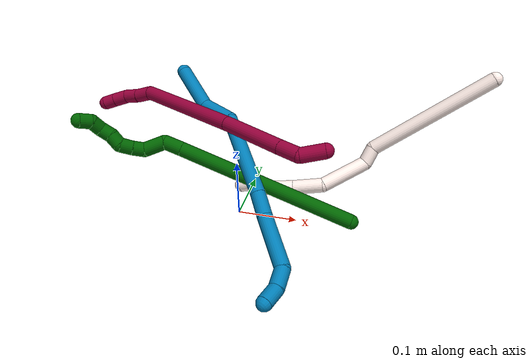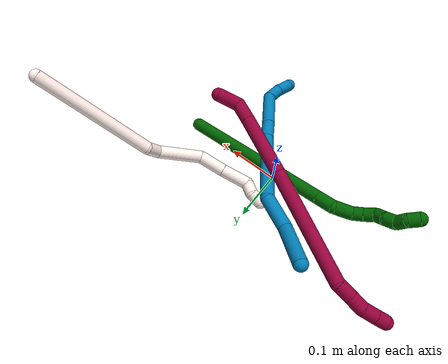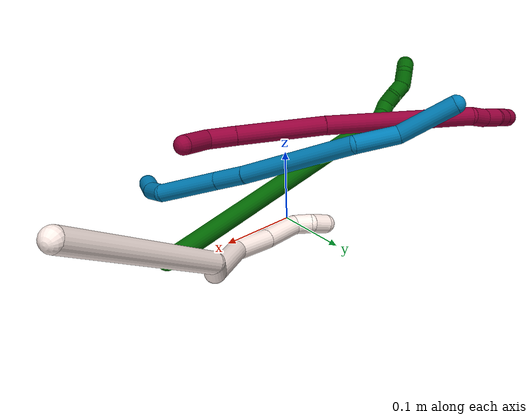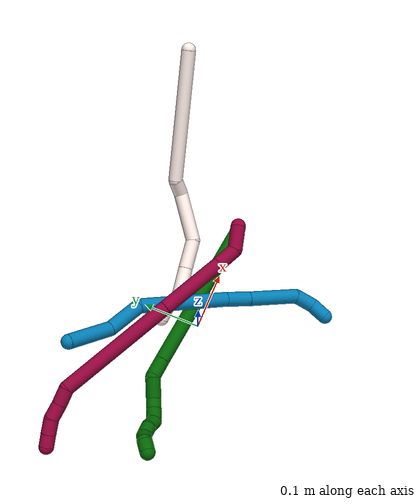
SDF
<sdf version="1.7">
 <world name="default">
  <model name="6">
   <static>0</static>
   <link name="6">
    <collision name="collision-cylinder-e_1_1_4">
     <pose>-0.041087 -0.064729 0.134017 0.449948 -0.269358 -0.061998</pose>
     <geometry><cylinder><radius>0.0125</radius><length>0.308796</length></cylinder></geometry>
     <surface>
      <friction><ode><mu>1.16</mu><mu2>1.16</mu2><slip1>0</slip1><slip2>0</slip2></ode></friction>
      <contact><ode><kp>1e+06</kp><kd>1</kd><max_vel>0</max_vel><min_depth>0.001</min_depth></ode></contact>
     </surface>
    </collision>
    <visual name="visual-cylinder-e_1_1_4">
     <pose>-0.041087 -0.064729 0.134017 0.449948 -0.269358 -0.061998</pose>
     <geometry><cylinder><radius>0.0125</radius><length>0.308796</length></cylinder></geometry>
     <material><ambient>0 0.392157 0.003922 1</ambient></material>
    </visual>
    <collision name="collision-cylinder-e_2_4_5">
     <pose>-0.08663 -0.136314 0.281899 0.459246 -0.280468 -0.065967</pose>
     <geometry><cylinder><radius>0.0125</radius><length>0.032191</length></cylinder></geometry>
     <surface>
      <friction><ode><mu>1.16</mu><mu2>1.16</mu2><slip1>0</slip1><slip2>0</slip2></ode></friction>
      <contact><ode><kp>1e+06</kp><kd>1</kd><max_vel>0</max_vel><min_depth>0.001</min_depth></ode></contact>
     </surface>
    </collision>
    <visual name="visual-cylinder-e_2_4_5">
     <pose>-0.08663 -0.136314 0.281899 0.459246 -0.280468 -0.065967</pose>
     <geometry><cylinder><radius>0.0125</radius><length>0.032191</length></cylinder></geometry>
     <material><ambient>0 0.392157 0.003922 1</ambient></material>
    </visual>
    <collision name="collision-cylinder-e_3_5_6">
     <pose>-0.104364 -0.154864 0.301546 1.11153 -0.794261 -0.509641</pose>
     <geometry><cylinder><radius>0.0125</radius><length>0.03723</length></cylinder></geometry>
     <surface>
      <friction><ode><mu>1.16</mu><mu2>1.16</mu2><slip1>0</slip1><slip2>0</slip2></ode></friction>
      <contact><ode><kp>1e+06</kp><kd>1</kd><max_vel>0</max_vel><min_depth>0.001</min_depth></ode></contact>
     </surface>
    </collision>
    <visual name="visual-cylinder-e_3_5_6">
     <pose>-0.104364 -0.154864 0.301546 1.11153 -0.794261 -0.509641</pose>
     <geometry><cylinder><radius>0.0125</radius><length>0.03723</length></cylinder></geometry>
     <material><ambient>0 0.392157 0.003922 1</ambient></material>
    </visual>
    <collision name="collision-cylinder-e_4_6_7">
     <pose>-0.119778 -0.174697 0.313208 0.945265 -0.209472 -0.107389</pose>
     <geometry><cylinder><radius>0.0125</radius><length>0.02053</length></cylinder></geometry>
     <surface>
      <friction><ode><mu>1.16</mu><mu2>1.16</mu2><slip1>0</slip1><slip2>0</slip2></ode></friction>
      <contact><ode><kp>1e+06</kp><kd>1</kd><max_vel>0</max_vel><min_depth>0.001</min_depth></ode></contact>
     </surface>
    </collision>
    <visual name="visual-cylinder-e_4_6_7">
     <pose>-0.119778 -0.174697 0.313208 0.945265 -0.209472 -0.107389</pose>
     <geometry><cylinder><radius>0.0125</radius><length>0.02053</length></cylinder></geometry>
     <material><ambient>0 0.392157 0.003922 1</ambient></material>
    </visual>
    <collision name="collision-cylinder-e_5_7_8">
     <pose>-0.122721 -0.191362 0.325346 0.937487 -0.076306 -0.038654</pose>
     <geometry><cylinder><radius>0.0125</radius><length>0.021213</length></cylinder></geometry>
     <surface>
      <friction><ode><mu>1.16</mu><mu2>1.16</mu2><slip1>0</slip1><slip2>0</slip2></ode></friction>
      <contact><ode><kp>1e+06</kp><kd>1</kd><max_vel>0</max_vel><min_depth>0.001</min_depth></ode></contact>
     </surface>
    </collision>
    <visual name="visual-cylinder-e_5_7_8">
     <pose>-0.122721 -0.191362 0.325346 0.937487 -0.076306 -0.038654</pose>
     <geometry><cylinder><radius>0.0125</radius><length>0.021213</length></cylinder></geometry>
     <material><ambient>0 0.392157 0.003922 1</ambient></material>
    </visual>
    <collision name="collision-cylinder-e_6_8_9">
     <pose>-0.121155 -0.203279 0.340721 0.35622 0.239368 0.043291</pose>
     <geometry><cylinder><radius>0.0125</radius><length>0.020026</length></cylinder></geometry>
     <surface>
      <friction><ode><mu>1.16</mu><mu2>1.16</mu2><slip1>0</slip1><slip2>0</slip2></ode></friction>
      <contact><ode><kp>1e+06</kp><kd>1</kd><max_vel>0</max_vel><min_depth>0.001</min_depth></ode></contact>
     </surface>
    </collision>
    <visual name="visual-cylinder-e_6_8_9">
     <pose>-0.121155 -0.203279 0.340721 0.35622 0.239368 0.043291</pose>
     <geometry><cylinder><radius>0.0125</radius><length>0.020026</length></cylinder></geometry>
     <material><ambient>0 0.392157 0.003922 1</ambient></material>
    </visual>
    <collision name="collision-cylinder-e_7_9_10">
     <pose>-0.118945 -0.21177 0.358445 0.534885 -0.016369 -0.004485</pose>
     <geometry><cylinder><radius>0.0125</radius><length>0.02001</length></cylinder></geometry>
     <surface>
      <friction><ode><mu>1.16</mu><mu2>1.16</mu2><slip1>0</slip1><slip2>0</slip2></ode></friction>
      <contact><ode><kp>1e+06</kp><kd>1</kd><max_vel>0</max_vel><min_depth>0.001</min_depth></ode></contact>
     </surface>
    </collision>
    <visual name="visual-cylinder-e_7_9_10">
     <pose>-0.118945 -0.21177 0.358445 0.534885 -0.016369 -0.004485</pose>
     <geometry><cylinder><radius>0.0125</radius><length>0.02001</length></cylinder></geometry>
     <material><ambient>0 0.392157 0.003922 1</ambient></material>
    </visual>
    <collision name="collision-cylinder-e_8_10_11">
     <pose>-0.115019 -0.223916 0.372849 0.882307 0.421348 0.201271</pose>
     <geometry><cylinder><radius>0.0125</radius><length>0.02</length></cylinder></geometry>
     <surface>
      <friction><ode><mu>1.16</mu><mu2>1.16</mu2><slip1>0</slip1><slip2>0</slip2></ode></friction>
      <contact><ode><kp>1e+06</kp><kd>1</kd><max_vel>0</max_vel><min_depth>0.001</min_depth></ode></contact>
     </surface>
    </collision>
    <visual name="visual-cylinder-e_8_10_11">
     <pose>-0.115019 -0.223916 0.372849 0.882307 0.421348 0.201271</pose>
     <geometry><cylinder><radius>0.0125</radius><length>0.02</length></cylinder></geometry>
     <material><ambient>0 0.392157 0.003922 1</ambient></material>
    </visual>
    <collision name="collision-cylinder-e_9_11_2">
     <pose>-0.112377 -0.240046 0.382578 1.16239 -0.145324 -0.095556</pose>
     <geometry><cylinder><radius>0.0125</radius><length>0.020004</length></cylinder></geometry>
     <surface>
      <friction><ode><mu>1.16</mu><mu2>1.16</mu2><slip1>0</slip1><slip2>0</slip2></ode></friction>
      <contact><ode><kp>1e+06</kp><kd>1</kd><max_vel>0</max_vel><min_depth>0.001</min_depth></ode></contact>
     </surface>
    </collision>
    <visual name="visual-cylinder-e_9_11_2">
     <pose>-0.112377 -0.240046 0.382578 1.16239 -0.145324 -0.095556</pose>
     <geometry><cylinder><radius>0.0125</radius><length>0.020004</length></cylinder></geometry>
     <material><ambient>0 0.392157 0.003922 1</ambient></material>
    </visual>
    <collision name="collision-sphere-2">
     <pose>-0.113826 -0.249128 0.386508 0 -0 0</pose>
     <geometry><sphere><radius>0.0125</radius></sphere></geometry>
     <surface>
      <friction><ode><mu>1.16</mu><mu2>1.16</mu2><slip1>0</slip1><slip2>0</slip2></ode></friction>
      <contact><ode><kp>1e+06</kp><kd>1</kd><max_vel>0</max_vel><min_depth>0.001</min_depth></ode></contact>
     </surface>
    </collision>
    <visual name="visual-sphere-2">
     <pose>-0.113826 -0.249128 0.386508 0 -0 0</pose>
     <geometry><sphere><radius>0.0125</radius></sphere></geometry>
     <material><ambient>0 0.392157 0.003922 1</ambient></material>
    </visual>
    <collision name="collision-sphere-11">
     <pose>-0.110929 -0.230963 0.378648 0 -0 0</pose>
     <geometry><sphere><radius>0.0125</radius></sphere></geometry>
     <surface>
      <friction><ode><mu>1.16</mu><mu2>1.16</mu2><slip1>0</slip1><slip2>0</slip2></ode></friction>
      <contact><ode><kp>1e+06</kp><kd>1</kd><max_vel>0</max_vel><min_depth>0.001</min_depth></ode></contact>
     </surface>
    </collision>
    <visual name="visual-sphere-11">
     <pose>-0.110929 -0.230963 0.378648 0 -0 0</pose>
     <geometry><sphere><radius>0.0125</radius></sphere></geometry>
     <material><ambient>0 0.392157 0.003922 1</ambient></material>
    </visual>
    <collision name="collision-sphere-10">
     <pose>-0.119109 -0.21687 0.367051 0 -0 0</pose>
     <geometry><sphere><radius>0.0125</radius></sphere></geometry>
     <surface>
      <friction><ode><mu>1.16</mu><mu2>1.16</mu2><slip1>0</slip1><slip2>0</slip2></ode></friction>
      <contact><ode><kp>1e+06</kp><kd>1</kd><max_vel>0</max_vel><min_depth>0.001</min_depth></ode></contact>
     </surface>
    </collision>
    <visual name="visual-sphere-10">
     <pose>-0.119109 -0.21687 0.367051 0 -0 0</pose>
     <geometry><sphere><radius>0.0125</radius></sphere></geometry>
     <material><ambient>0 0.392157 0.003922 1</ambient></material>
    </visual>
    <collision name="collision-sphere-9">
     <pose>-0.118781 -0.206671 0.349838 0 -0 0</pose>
     <geometry><sphere><radius>0.0125</radius></sphere></geometry>
     <surface>
      <friction><ode><mu>1.16</mu><mu2>1.16</mu2><slip1>0</slip1><slip2>0</slip2></ode></friction>
      <contact><ode><kp>1e+06</kp><kd>1</kd><max_vel>0</max_vel><min_depth>0.001</min_depth></ode></contact>
     </surface>
    </collision>
    <visual name="visual-sphere-9">
     <pose>-0.118781 -0.206671 0.349838 0 -0 0</pose>
     <geometry><sphere><radius>0.0125</radius></sphere></geometry>
     <material><ambient>0 0.392157 0.003922 1</ambient></material>
    </visual>
    <collision name="collision-sphere-4">
     <pose>-0.082174 -0.129458 0.268035 0 -0 0</pose>
     <geometry><sphere><radius>0.0125</radius></sphere></geometry>
     <surface>
      <friction><ode><mu>1.16</mu><mu2>1.16</mu2><slip1>0</slip1><slip2>0</slip2></ode></friction>
      <contact><ode><kp>1e+06</kp><kd>1</kd><max_vel>0</max_vel><min_depth>0.001</min_depth></ode></contact>
     </surface>
    </collision>
    <visual name="visual-sphere-4">
     <pose>-0.082174 -0.129458 0.268035 0 -0 0</pose>
     <geometry><sphere><radius>0.0125</radius></sphere></geometry>
     <material><ambient>0 0.392157 0.003922 1</ambient></material>
    </visual>
    <collision name="collision-sphere-1">
     <geometry><sphere><radius>0.0125</radius></sphere></geometry>
     <surface>
      <friction><ode><mu>1.16</mu><mu2>1.16</mu2><slip1>0</slip1><slip2>0</slip2></ode></friction>
      <contact><ode><kp>1e+06</kp><kd>1</kd><max_vel>0</max_vel><min_depth>0.001</min_depth></ode></contact>
     </surface>
    </collision>
    <visual name="visual-sphere-1">
     <geometry><sphere><radius>0.0125</radius></sphere></geometry>
     <material><ambient>0 0.392157 0.003922 1</ambient></material>
    </visual>
    <collision name="collision-sphere-8">
     <pose>-0.123529 -0.199886 0.331604 0 -0 0</pose>
     <geometry><sphere><radius>0.0125</radius></sphere></geometry>
     <surface>
      <friction><ode><mu>1.16</mu><mu2>1.16</mu2><slip1>0</slip1><slip2>0</slip2></ode></friction>
      <contact><ode><kp>1e+06</kp><kd>1</kd><max_vel>0</max_vel><min_depth>0.001</min_depth></ode></contact>
     </surface>
    </collision>
    <visual name="visual-sphere-8">
     <pose>-0.123529 -0.199886 0.331604 0 -0 0</pose>
     <geometry><sphere><radius>0.0125</radius></sphere></geometry>
     <material><ambient>0 0.392157 0.003922 1</ambient></material>
    </visual>
    <collision name="collision-sphere-5">
     <pose>-0.091085 -0.14317 0.295762 0 -0 0</pose>
     <geometry><sphere><radius>0.0125</radius></sphere></geometry>
     <surface>
      <friction><ode><mu>1.16</mu><mu2>1.16</mu2><slip1>0</slip1><slip2>0</slip2></ode></friction>
      <contact><ode><kp>1e+06</kp><kd>1</kd><max_vel>0</max_vel><min_depth>0.001</min_depth></ode></contact>
     </surface>
    </collision>
    <visual name="visual-sphere-5">
     <pose>-0.091085 -0.14317 0.295762 0 -0 0</pose>
     <geometry><sphere><radius>0.0125</radius></sphere></geometry>
     <material><ambient>0 0.392157 0.003922 1</ambient></material>
    </visual>
    <collision name="collision-sphere-6">
     <pose>-0.117643 -0.166558 0.307329 0 -0 0</pose>
     <geometry><sphere><radius>0.0125</radius></sphere></geometry>
     <surface>
      <friction><ode><mu>1.16</mu><mu2>1.16</mu2><slip1>0</slip1><slip2>0</slip2></ode></friction>
      <contact><ode><kp>1e+06</kp><kd>1</kd><max_vel>0</max_vel><min_depth>0.001</min_depth></ode></contact>
     </surface>
    </collision>
    <visual name="visual-sphere-6">
     <pose>-0.117643 -0.166558 0.307329 0 -0 0</pose>
     <geometry><sphere><radius>0.0125</radius></sphere></geometry>
     <material><ambient>0 0.392157 0.003922 1</ambient></material>
    </visual>
    <collision name="collision-sphere-7">
     <pose>-0.121912 -0.182837 0.319087 0 -0 0</pose>
     <geometry><sphere><radius>0.0125</radius></sphere></geometry>
     <surface>
      <friction><ode><mu>1.16</mu><mu2>1.16</mu2><slip1>0</slip1><slip2>0</slip2></ode></friction>
      <contact><ode><kp>1e+06</kp><kd>1</kd><max_vel>0</max_vel><min_depth>0.001</min_depth></ode></contact>
     </surface>
    </collision>
    <visual name="visual-sphere-7">
     <pose>-0.121912 -0.182837 0.319087 0 -0 0</pose>
     <geometry><sphere><radius>0.0125</radius></sphere></geometry>
     <material><ambient>0 0.392157 0.003922 1</ambient></material>
    </visual>
    <inertial>
     <pose>-0.067558 -0.110753 0.208246 0 -0 0</pose>
     <mass>0.5</mass>
     <inertia>
      <ixx>0.00223</ixx>
      <ixy>0</ixy>
      <ixz>0</ixz>
      <iyy>0.002079</iyy>
      <iyz>0</iyz>
      <izz>0.001737</izz>
     </inertia>
    </inertial>
   </link>
   <pose>0.192255 0.000573 0.013802 -0.562176 -1.01831 0.038758</pose>
  </model>
  <model name="8">
   <static>0</static>
   <link name="8">
    <collision name="collision-cylinder-e_1_1_4">
     <pose>-5.4e-05 3.1e-05 -0.020536 -3.14007 -0.00263 2.0918</pose>
     <geometry><cylinder><radius>0.0125</radius><length>0.041072</length></cylinder></geometry>
     <surface>
      <friction><ode><mu>1.16</mu><mu2>1.16</mu2><slip1>0</slip1><slip2>0</slip2></ode></friction>
      <contact><ode><kp>1e+06</kp><kd>1</kd><max_vel>0</max_vel><min_depth>0.001</min_depth></ode></contact>
     </surface>
    </collision>
    <visual name="visual-cylinder-e_1_1_4">
     <pose>-5.4e-05 3.1e-05 -0.020536 -3.14007 -0.00263 2.0918</pose>
     <geometry><cylinder><radius>0.0125</radius><length>0.041072</length></cylinder></geometry>
     <material><ambient>0.584314 0 0.227451 1</ambient></material>
    </visual>
    <collision name="collision-cylinder-e_2_4_5">
     <pose>-0.012239 -0.000547 -0.055032 3.09797 -0.714925 -3.02491</pose>
     <geometry><cylinder><radius>0.0125</radius><length>0.03701</length></cylinder></geometry>
     <surface>
      <friction><ode><mu>1.16</mu><mu2>1.16</mu2><slip1>0</slip1><slip2>0</slip2></ode></friction>
      <contact><ode><kp>1e+06</kp><kd>1</kd><max_vel>0</max_vel><min_depth>0.001</min_depth></ode></contact>
     </surface>
    </collision>
    <visual name="visual-cylinder-e_2_4_5">
     <pose>-0.012239 -0.000547 -0.055032 3.09797 -0.714925 -3.02491</pose>
     <geometry><cylinder><radius>0.0125</radius><length>0.03701</length></cylinder></geometry>
     <material><ambient>0.584314 0 0.227451 1</ambient></material>
    </visual>
    <collision name="collision-cylinder-e_3_5_6">
     <pose>-0.063405 -0.002529 -0.111604 3.10938 -0.741361 -3.05874</pose>
     <geometry><cylinder><radius>0.0125</radius><length>0.115608</length></cylinder></geometry>
     <surface>
      <friction><ode><mu>1.16</mu><mu2>1.16</mu2><slip1>0</slip1><slip2>0</slip2></ode></friction>
      <contact><ode><kp>1e+06</kp><kd>1</kd><max_vel>0</max_vel><min_depth>0.001</min_depth></ode></contact>
     </surface>
    </collision>
    <visual name="visual-cylinder-e_3_5_6">
     <pose>-0.063405 -0.002529 -0.111604 3.10938 -0.741361 -3.05874</pose>
     <geometry><cylinder><radius>0.0125</radius><length>0.115608</length></cylinder></geometry>
     <material><ambient>0.584314 0 0.227451 1</ambient></material>
    </visual>
    <collision name="collision-cylinder-e_4_6_7">
     <pose>-0.171886 -0.001147 -0.230108 -3.1053 -0.740743 3.04818</pose>
     <geometry><cylinder><radius>0.0125</radius><length>0.205819</length></cylinder></geometry>
     <surface>
      <friction><ode><mu>1.16</mu><mu2>1.16</mu2><slip1>0</slip1><slip2>0</slip2></ode></friction>
      <contact><ode><kp>1e+06</kp><kd>1</kd><max_vel>0</max_vel><min_depth>0.001</min_depth></ode></contact>
     </surface>
    </collision>
    <visual name="visual-cylinder-e_4_6_7">
     <pose>-0.171886 -0.001147 -0.230108 -3.1053 -0.740743 3.04818</pose>
     <geometry><cylinder><radius>0.0125</radius><length>0.205819</length></cylinder></geometry>
     <material><ambient>0.584314 0 0.227451 1</ambient></material>
    </visual>
    <collision name="collision-cylinder-e_5_7_8">
     <pose>-0.244963 0.004531 -0.319424 -2.92723 -0.25833 1.758</pose>
     <geometry><cylinder><radius>0.0125</radius><length>0.028415</length></cylinder></geometry>
     <surface>
      <friction><ode><mu>1.16</mu><mu2>1.16</mu2><slip1>0</slip1><slip2>0</slip2></ode></friction>
      <contact><ode><kp>1e+06</kp><kd>1</kd><max_vel>0</max_vel><min_depth>0.001</min_depth></ode></contact>
     </surface>
    </collision>
    <visual name="visual-cylinder-e_5_7_8">
     <pose>-0.244963 0.004531 -0.319424 -2.92723 -0.25833 1.758</pose>
     <geometry><cylinder><radius>0.0125</radius><length>0.028415</length></cylinder></geometry>
     <material><ambient>0.584314 0 0.227451 1</ambient></material>
    </visual>
    <collision name="collision-cylinder-e_6_8_9">
     <pose>-0.253149 0.008811 -0.345252 -3.03256 -0.350032 2.54293</pose>
     <geometry><cylinder><radius>0.0125</radius><length>0.026574</length></cylinder></geometry>
     <surface>
      <friction><ode><mu>1.16</mu><mu2>1.16</mu2><slip1>0</slip1><slip2>0</slip2></ode></friction>
      <contact><ode><kp>1e+06</kp><kd>1</kd><max_vel>0</max_vel><min_depth>0.001</min_depth></ode></contact>
     </surface>
    </collision>
    <visual name="visual-cylinder-e_6_8_9">
     <pose>-0.253149 0.008811 -0.345252 -3.03256 -0.350032 2.54293</pose>
     <geometry><cylinder><radius>0.0125</radius><length>0.026574</length></cylinder></geometry>
     <material><ambient>0.584314 0 0.227451 1</ambient></material>
    </visual>
    <collision name="collision-cylinder-e_7_9_10">
     <pose>-0.258075 0.011801 -0.369981 -3.00987 -0.029708 0.443058</pose>
     <geometry><cylinder><radius>0.0125</radius><length>0.024869</length></cylinder></geometry>
     <surface>
      <friction><ode><mu>1.16</mu><mu2>1.16</mu2><slip1>0</slip1><slip2>0</slip2></ode></friction>
      <contact><ode><kp>1e+06</kp><kd>1</kd><max_vel>0</max_vel><min_depth>0.001</min_depth></ode></contact>
     </surface>
    </collision>
    <visual name="visual-cylinder-e_7_9_10">
     <pose>-0.258075 0.011801 -0.369981 -3.00987 -0.029708 0.443058</pose>
     <geometry><cylinder><radius>0.0125</radius><length>0.024869</length></cylinder></geometry>
     <material><ambient>0.584314 0 0.227451 1</ambient></material>
    </visual>
    <collision name="collision-cylinder-e_8_10_2">
     <pose>-0.258505 0.014882 -0.392517 -3.00081 -0.005878 0.083313</pose>
     <geometry><cylinder><radius>0.0125</radius><length>0.020635</length></cylinder></geometry>
     <surface>
      <friction><ode><mu>1.16</mu><mu2>1.16</mu2><slip1>0</slip1><slip2>0</slip2></ode></friction>
      <contact><ode><kp>1e+06</kp><kd>1</kd><max_vel>0</max_vel><min_depth>0.001</min_depth></ode></contact>
     </surface>
    </collision>
    <visual name="visual-cylinder-e_8_10_2">
     <pose>-0.258505 0.014882 -0.392517 -3.00081 -0.005878 0.083313</pose>
     <geometry><cylinder><radius>0.0125</radius><length>0.020635</length></cylinder></geometry>
     <material><ambient>0.584314 0 0.227451 1</ambient></material>
    </visual>
    <collision name="collision-sphere-2">
     <pose>-0.258565 0.016329 -0.402732 0 -0 0</pose>
     <geometry><sphere><radius>0.0125</radius></sphere></geometry>
     <surface>
      <friction><ode><mu>1.16</mu><mu2>1.16</mu2><slip1>0</slip1><slip2>0</slip2></ode></friction>
      <contact><ode><kp>1e+06</kp><kd>1</kd><max_vel>0</max_vel><min_depth>0.001</min_depth></ode></contact>
     </surface>
    </collision>
    <visual name="visual-sphere-2">
     <pose>-0.258565 0.016329 -0.402732 0 -0 0</pose>
     <geometry><sphere><radius>0.0125</radius></sphere></geometry>
     <material><ambient>0.584314 0 0.227451 1</ambient></material>
    </visual>
    <collision name="collision-sphere-10">
     <pose>-0.258444 0.013434 -0.382302 0 -0 0</pose>
     <geometry><sphere><radius>0.0125</radius></sphere></geometry>
     <surface>
      <friction><ode><mu>1.16</mu><mu2>1.16</mu2><slip1>0</slip1><slip2>0</slip2></ode></friction>
      <contact><ode><kp>1e+06</kp><kd>1</kd><max_vel>0</max_vel><min_depth>0.001</min_depth></ode></contact>
     </surface>
    </collision>
    <visual name="visual-sphere-10">
     <pose>-0.258444 0.013434 -0.382302 0 -0 0</pose>
     <geometry><sphere><radius>0.0125</radius></sphere></geometry>
     <material><ambient>0.584314 0 0.227451 1</ambient></material>
    </visual>
    <collision name="collision-sphere-9">
     <pose>-0.257705 0.010169 -0.35766 0 -0 0</pose>
     <geometry><sphere><radius>0.0125</radius></sphere></geometry>
     <surface>
      <friction><ode><mu>1.16</mu><mu2>1.16</mu2><slip1>0</slip1><slip2>0</slip2></ode></friction>
      <contact><ode><kp>1e+06</kp><kd>1</kd><max_vel>0</max_vel><min_depth>0.001</min_depth></ode></contact>
     </surface>
    </collision>
    <visual name="visual-sphere-9">
     <pose>-0.257705 0.010169 -0.35766 0 -0 0</pose>
     <geometry><sphere><radius>0.0125</radius></sphere></geometry>
     <material><ambient>0.584314 0 0.227451 1</ambient></material>
    </visual>
    <collision name="collision-sphere-4">
     <pose>-0.000108 6.3e-05 -0.041071 0 -0 0</pose>
     <geometry><sphere><radius>0.0125</radius></sphere></geometry>
     <surface>
      <friction><ode><mu>1.16</mu><mu2>1.16</mu2><slip1>0</slip1><slip2>0</slip2></ode></friction>
      <contact><ode><kp>1e+06</kp><kd>1</kd><max_vel>0</max_vel><min_depth>0.001</min_depth></ode></contact>
     </surface>
    </collision>
    <visual name="visual-sphere-4">
     <pose>-0.000108 6.3e-05 -0.041071 0 -0 0</pose>
     <geometry><sphere><radius>0.0125</radius></sphere></geometry>
     <material><ambient>0.584314 0 0.227451 1</ambient></material>
    </visual>
    <collision name="collision-sphere-1">
     <geometry><sphere><radius>0.0125</radius></sphere></geometry>
     <surface>
      <friction><ode><mu>1.16</mu><mu2>1.16</mu2><slip1>0</slip1><slip2>0</slip2></ode></friction>
      <contact><ode><kp>1e+06</kp><kd>1</kd><max_vel>0</max_vel><min_depth>0.001</min_depth></ode></contact>
     </surface>
    </collision>
    <visual name="visual-sphere-1">
     <geometry><sphere><radius>0.0125</radius></sphere></geometry>
     <material><ambient>0.584314 0 0.227451 1</ambient></material>
    </visual>
    <collision name="collision-sphere-8">
     <pose>-0.248592 0.007453 -0.332845 0 -0 0</pose>
     <geometry><sphere><radius>0.0125</radius></sphere></geometry>
     <surface>
      <friction><ode><mu>1.16</mu><mu2>1.16</mu2><slip1>0</slip1><slip2>0</slip2></ode></friction>
      <contact><ode><kp>1e+06</kp><kd>1</kd><max_vel>0</max_vel><min_depth>0.001</min_depth></ode></contact>
     </surface>
    </collision>
    <visual name="visual-sphere-8">
     <pose>-0.248592 0.007453 -0.332845 0 -0 0</pose>
     <geometry><sphere><radius>0.0125</radius></sphere></geometry>
     <material><ambient>0.584314 0 0.227451 1</ambient></material>
    </visual>
    <collision name="collision-sphere-5">
     <pose>-0.02437 -0.001156 -0.068993 0 -0 0</pose>
     <geometry><sphere><radius>0.0125</radius></sphere></geometry>
     <surface>
      <friction><ode><mu>1.16</mu><mu2>1.16</mu2><slip1>0</slip1><slip2>0</slip2></ode></friction>
      <contact><ode><kp>1e+06</kp><kd>1</kd><max_vel>0</max_vel><min_depth>0.001</min_depth></ode></contact>
     </surface>
    </collision>
    <visual name="visual-sphere-5">
     <pose>-0.02437 -0.001156 -0.068993 0 -0 0</pose>
     <geometry><sphere><radius>0.0125</radius></sphere></geometry>
     <material><ambient>0.584314 0 0.227451 1</ambient></material>
    </visual>
    <collision name="collision-sphere-6">
     <pose>-0.102439 -0.003903 -0.154215 0 -0 0</pose>
     <geometry><sphere><radius>0.0125</radius></sphere></geometry>
     <surface>
      <friction><ode><mu>1.16</mu><mu2>1.16</mu2><slip1>0</slip1><slip2>0</slip2></ode></friction>
      <contact><ode><kp>1e+06</kp><kd>1</kd><max_vel>0</max_vel><min_depth>0.001</min_depth></ode></contact>
     </surface>
    </collision>
    <visual name="visual-sphere-6">
     <pose>-0.102439 -0.003903 -0.154215 0 -0 0</pose>
     <geometry><sphere><radius>0.0125</radius></sphere></geometry>
     <material><ambient>0.584314 0 0.227451 1</ambient></material>
    </visual>
    <collision name="collision-sphere-7">
     <pose>-0.241333 0.001609 -0.306002 0 -0 0</pose>
     <geometry><sphere><radius>0.0125</radius></sphere></geometry>
     <surface>
      <friction><ode><mu>1.16</mu><mu2>1.16</mu2><slip1>0</slip1><slip2>0</slip2></ode></friction>
      <contact><ode><kp>1e+06</kp><kd>1</kd><max_vel>0</max_vel><min_depth>0.001</min_depth></ode></contact>
     </surface>
    </collision>
    <visual name="visual-sphere-7">
     <pose>-0.241333 0.001609 -0.306002 0 -0 0</pose>
     <geometry><sphere><radius>0.0125</radius></sphere></geometry>
     <material><ambient>0.584314 0 0.227451 1</ambient></material>
    </visual>
    <inertial>
     <pose>-0.137205 0.000832 -0.197389 0 -0 0</pose>
     <mass>0.5</mass>
     <inertia>
      <ixx>-0.000611</ixx>
      <ixy>0</ixy>
      <ixz>0</ixz>
      <iyy>0.000929</iyy>
      <iyz>0</iyz>
      <izz>0.000542</izz>
     </inertia>
    </inertial>
   </link>
   <pose>0.14715 -0.011072 0.152479 -1.3743 0.181833 -1.28073</pose>
  </model>
  <model name="9">
   <static>0</static>
   <link name="9">
    <collision name="collision-cylinder-e_1_1_4">
     <pose>0.000532 0.000127 0.014716 -0.008662 0.036135 -0.000157</pose>
     <geometry><cylinder><radius>0.0125</radius><length>0.029452</length></cylinder></geometry>
     <surface>
      <friction><ode><mu>1.16</mu><mu2>1.16</mu2><slip1>0</slip1><slip2>0</slip2></ode></friction>
      <contact><ode><kp>1e+06</kp><kd>1</kd><max_vel>0</max_vel><min_depth>0.001</min_depth></ode></contact>
     </surface>
    </collision>
    <visual name="visual-cylinder-e_1_1_4">
     <pose>0.000532 0.000127 0.014716 -0.008662 0.036135 -0.000157</pose>
     <geometry><cylinder><radius>0.0125</radius><length>0.029452</length></cylinder></geometry>
     <material><ambient>0 0.490196 0.709804 1</ambient></material>
    </visual>
    <collision name="collision-cylinder-e_2_4_5">
     <pose>-0.003438 0.003316 0.04524 -0.191266 -0.272636 0.026314</pose>
     <geometry><cylinder><radius>0.0125</radius><length>0.033439</length></cylinder></geometry>
     <surface>
      <friction><ode><mu>1.16</mu><mu2>1.16</mu2><slip1>0</slip1><slip2>0</slip2></ode></friction>
      <contact><ode><kp>1e+06</kp><kd>1</kd><max_vel>0</max_vel><min_depth>0.001</min_depth></ode></contact>
     </surface>
    </collision>
    <visual name="visual-cylinder-e_2_4_5">
     <pose>-0.003438 0.003316 0.04524 -0.191266 -0.272636 0.026314</pose>
     <geometry><cylinder><radius>0.0125</radius><length>0.033439</length></cylinder></geometry>
     <material><ambient>0 0.490196 0.709804 1</ambient></material>
    </visual>
    <collision name="collision-cylinder-e_3_5_6">
     <pose>-0.032757 0.0323 0.088876 -0.749983 -0.578151 0.233068</pose>
     <geometry><cylinder><radius>0.0125</radius><length>0.090825</length></cylinder></geometry>
     <surface>
      <friction><ode><mu>1.16</mu><mu2>1.16</mu2><slip1>0</slip1><slip2>0</slip2></ode></friction>
      <contact><ode><kp>1e+06</kp><kd>1</kd><max_vel>0</max_vel><min_depth>0.001</min_depth></ode></contact>
     </surface>
    </collision>
    <visual name="visual-cylinder-e_3_5_6">
     <pose>-0.032757 0.0323 0.088876 -0.749983 -0.578151 0.233068</pose>
     <geometry><cylinder><radius>0.0125</radius><length>0.090825</length></cylinder></geometry>
     <material><ambient>0 0.490196 0.709804 1</ambient></material>
    </visual>
    <collision name="collision-cylinder-e_4_6_7">
     <pose>-0.069134 0.070025 0.130441 -0.70973 -0.568115 0.215529</pose>
     <geometry><cylinder><radius>0.0125</radius><length>0.042971</length></cylinder></geometry>
     <surface>
      <friction><ode><mu>1.16</mu><mu2>1.16</mu2><slip1>0</slip1><slip2>0</slip2></ode></friction>
      <contact><ode><kp>1e+06</kp><kd>1</kd><max_vel>0</max_vel><min_depth>0.001</min_depth></ode></contact>
     </surface>
    </collision>
    <visual name="visual-cylinder-e_4_6_7">
     <pose>-0.069134 0.070025 0.130441 -0.70973 -0.568115 0.215529</pose>
     <geometry><cylinder><radius>0.0125</radius><length>0.042971</length></cylinder></geometry>
     <material><ambient>0 0.490196 0.709804 1</ambient></material>
    </visual>
    <collision name="collision-cylinder-e_5_7_8">
     <pose>-0.127174 0.126914 0.191034 -0.766177 -0.62058 0.257016</pose>
     <geometry><cylinder><radius>0.0125</radius><length>0.15986</length></cylinder></geometry>
     <surface>
      <friction><ode><mu>1.16</mu><mu2>1.16</mu2><slip1>0</slip1><slip2>0</slip2></ode></friction>
      <contact><ode><kp>1e+06</kp><kd>1</kd><max_vel>0</max_vel><min_depth>0.001</min_depth></ode></contact>
     </surface>
    </collision>
    <visual name="visual-cylinder-e_5_7_8">
     <pose>-0.127174 0.126914 0.191034 -0.766177 -0.62058 0.257016</pose>
     <geometry><cylinder><radius>0.0125</radius><length>0.15986</length></cylinder></geometry>
     <material><ambient>0 0.490196 0.709804 1</ambient></material>
    </visual>
    <collision name="collision-cylinder-e_6_8_9">
     <pose>-0.188313 0.19884 0.241631 -1.43227 -0.4959 0.433695</pose>
     <geometry><cylinder><radius>0.0125</radius><length>0.061616</length></cylinder></geometry>
     <surface>
      <friction><ode><mu>1.16</mu><mu2>1.16</mu2><slip1>0</slip1><slip2>0</slip2></ode></friction>
      <contact><ode><kp>1e+06</kp><kd>1</kd><max_vel>0</max_vel><min_depth>0.001</min_depth></ode></contact>
     </surface>
    </collision>
    <visual name="visual-cylinder-e_6_8_9">
     <pose>-0.188313 0.19884 0.241631 -1.43227 -0.4959 0.433695</pose>
     <geometry><cylinder><radius>0.0125</radius><length>0.061616</length></cylinder></geometry>
     <material><ambient>0 0.490196 0.709804 1</ambient></material>
    </visual>
    <collision name="collision-cylinder-e_7_9_2">
     <pose>-0.233323 0.248906 0.259989 -1.00917 -0.835673 0.480909</pose>
     <geometry><cylinder><radius>0.0125</radius><length>0.081838</length></cylinder></geometry>
     <surface>
      <friction><ode><mu>1.16</mu><mu2>1.16</mu2><slip1>0</slip1><slip2>0</slip2></ode></friction>
      <contact><ode><kp>1e+06</kp><kd>1</kd><max_vel>0</max_vel><min_depth>0.001</min_depth></ode></contact>
     </surface>
    </collision>
    <visual name="visual-cylinder-e_7_9_2">
     <pose>-0.233323 0.248906 0.259989 -1.00917 -0.835673 0.480909</pose>
     <geometry><cylinder><radius>0.0125</radius><length>0.081838</length></cylinder></geometry>
     <material><ambient>0 0.490196 0.709804 1</ambient></material>
    </visual>
    <collision name="collision-sphere-2">
     <pose>-0.263675 0.272134 0.274604 0 -0 0</pose>
     <geometry><sphere><radius>0.0125</radius></sphere></geometry>
     <surface>
      <friction><ode><mu>1.16</mu><mu2>1.16</mu2><slip1>0</slip1><slip2>0</slip2></ode></friction>
      <contact><ode><kp>1e+06</kp><kd>1</kd><max_vel>0</max_vel><min_depth>0.001</min_depth></ode></contact>
     </surface>
    </collision>
    <visual name="visual-sphere-2">
     <pose>-0.263675 0.272134 0.274604 0 -0 0</pose>
     <geometry><sphere><radius>0.0125</radius></sphere></geometry>
     <material><ambient>0 0.490196 0.709804 1</ambient></material>
    </visual>
    <collision name="collision-sphere-9">
     <pose>-0.202972 0.225678 0.245373 0 -0 0</pose>
     <geometry><sphere><radius>0.0125</radius></sphere></geometry>
     <surface>
      <friction><ode><mu>1.16</mu><mu2>1.16</mu2><slip1>0</slip1><slip2>0</slip2></ode></friction>
      <contact><ode><kp>1e+06</kp><kd>1</kd><max_vel>0</max_vel><min_depth>0.001</min_depth></ode></contact>
     </surface>
    </collision>
    <visual name="visual-sphere-9">
     <pose>-0.202972 0.225678 0.245373 0 -0 0</pose>
     <geometry><sphere><radius>0.0125</radius></sphere></geometry>
     <material><ambient>0 0.490196 0.709804 1</ambient></material>
    </visual>
    <collision name="collision-sphere-4">
     <pose>0.001064 0.000255 0.029431 0 -0 0</pose>
     <geometry><sphere><radius>0.0125</radius></sphere></geometry>
     <surface>
      <friction><ode><mu>1.16</mu><mu2>1.16</mu2><slip1>0</slip1><slip2>0</slip2></ode></friction>
      <contact><ode><kp>1e+06</kp><kd>1</kd><max_vel>0</max_vel><min_depth>0.001</min_depth></ode></contact>
     </surface>
    </collision>
    <visual name="visual-sphere-4">
     <pose>0.001064 0.000255 0.029431 0 -0 0</pose>
     <geometry><sphere><radius>0.0125</radius></sphere></geometry>
     <material><ambient>0 0.490196 0.709804 1</ambient></material>
    </visual>
    <collision name="collision-sphere-1">
     <geometry><sphere><radius>0.0125</radius></sphere></geometry>
     <surface>
      <friction><ode><mu>1.16</mu><mu2>1.16</mu2><slip1>0</slip1><slip2>0</slip2></ode></friction>
      <contact><ode><kp>1e+06</kp><kd>1</kd><max_vel>0</max_vel><min_depth>0.001</min_depth></ode></contact>
     </surface>
    </collision>
    <visual name="visual-sphere-1">
     <geometry><sphere><radius>0.0125</radius></sphere></geometry>
     <material><ambient>0 0.490196 0.709804 1</ambient></material>
    </visual>
    <collision name="collision-sphere-8">
     <pose>-0.173653 0.172003 0.23789 0 -0 0</pose>
     <geometry><sphere><radius>0.0125</radius></sphere></geometry>
     <surface>
      <friction><ode><mu>1.16</mu><mu2>1.16</mu2><slip1>0</slip1><slip2>0</slip2></ode></friction>
      <contact><ode><kp>1e+06</kp><kd>1</kd><max_vel>0</max_vel><min_depth>0.001</min_depth></ode></contact>
     </surface>
    </collision>
    <visual name="visual-sphere-8">
     <pose>-0.173653 0.172003 0.23789 0 -0 0</pose>
     <geometry><sphere><radius>0.0125</radius></sphere></geometry>
     <material><ambient>0 0.490196 0.709804 1</ambient></material>
    </visual>
    <collision name="collision-sphere-5">
     <pose>-0.00794 0.006377 0.061048 0 -0 0</pose>
     <geometry><sphere><radius>0.0125</radius></sphere></geometry>
     <surface>
      <friction><ode><mu>1.16</mu><mu2>1.16</mu2><slip1>0</slip1><slip2>0</slip2></ode></friction>
      <contact><ode><kp>1e+06</kp><kd>1</kd><max_vel>0</max_vel><min_depth>0.001</min_depth></ode></contact>
     </surface>
    </collision>
    <visual name="visual-sphere-5">
     <pose>-0.00794 0.006377 0.061048 0 -0 0</pose>
     <geometry><sphere><radius>0.0125</radius></sphere></geometry>
     <material><ambient>0 0.490196 0.709804 1</ambient></material>
    </visual>
    <collision name="collision-sphere-6">
     <pose>-0.057574 0.058224 0.116703 0 -0 0</pose>
     <geometry><sphere><radius>0.0125</radius></sphere></geometry>
     <surface>
      <friction><ode><mu>1.16</mu><mu2>1.16</mu2><slip1>0</slip1><slip2>0</slip2></ode></friction>
      <contact><ode><kp>1e+06</kp><kd>1</kd><max_vel>0</max_vel><min_depth>0.001</min_depth></ode></contact>
     </surface>
    </collision>
    <visual name="visual-sphere-6">
     <pose>-0.057574 0.058224 0.116703 0 -0 0</pose>
     <geometry><sphere><radius>0.0125</radius></sphere></geometry>
     <material><ambient>0 0.490196 0.709804 1</ambient></material>
    </visual>
    <collision name="collision-sphere-7">
     <pose>-0.080694 0.081826 0.144178 0 -0 0</pose>
     <geometry><sphere><radius>0.0125</radius></sphere></geometry>
     <surface>
      <friction><ode><mu>1.16</mu><mu2>1.16</mu2><slip1>0</slip1><slip2>0</slip2></ode></friction>
      <contact><ode><kp>1e+06</kp><kd>1</kd><max_vel>0</max_vel><min_depth>0.001</min_depth></ode></contact>
     </surface>
    </collision>
    <visual name="visual-sphere-7">
     <pose>-0.080694 0.081826 0.144178 0 -0 0</pose>
     <geometry><sphere><radius>0.0125</radius></sphere></geometry>
     <material><ambient>0 0.490196 0.709804 1</ambient></material>
    </visual>
    <inertial>
     <pose>-0.114146 0.117935 0.164655 0 -0 0</pose>
     <mass>0.5</mass>
     <inertia>
      <ixx>0.000476</ixx>
      <ixy>0</ixy>
      <ixz>0</ixz>
      <iyy>0.000519</iyy>
      <iyz>0</iyz>
      <izz>2.6e-05</izz>
     </inertia>
    </inertial>
   </link>
   <pose>0.098725 -0.199916 0.012467 -1.29855 1.14865 -0.094841</pose>
  </model>
  <model name="11">
   <static>0</static>
   <link name="11">
    <collision name="collision-cylinder-e_1_1_4">
     <pose>-0.058541 0.019804 -0.096222 -2.93861 -0.537406 2.43312</pose>
     <geometry><cylinder><radius>0.0125</radius><length>0.228718</length></cylinder></geometry>
     <surface>
      <friction><ode><mu>1.16</mu><mu2>1.16</mu2><slip1>0</slip1><slip2>0</slip2></ode></friction>
      <contact><ode><kp>1e+06</kp><kd>1</kd><max_vel>0</max_vel><min_depth>0.001</min_depth></ode></contact>
     </surface>
    </collision>
    <visual name="visual-cylinder-e_1_1_4">
     <pose>-0.058541 0.019804 -0.096222 -2.93861 -0.537406 2.43312</pose>
     <geometry><cylinder><radius>0.0125</radius><length>0.228718</length></cylinder></geometry>
     <material><ambient>1 0.933333 0.909804 1</ambient></material>
    </visual>
    <collision name="collision-cylinder-e_2_4_5">
     <pose>-0.12296 0.049809 -0.201805 -2.3132 -0.401441 0.866899</pose>
     <geometry><cylinder><radius>0.0125</radius><length>0.030083</length></cylinder></geometry>
     <surface>
      <friction><ode><mu>1.16</mu><mu2>1.16</mu2><slip1>0</slip1><slip2>0</slip2></ode></friction>
      <contact><ode><kp>1e+06</kp><kd>1</kd><max_vel>0</max_vel><min_depth>0.001</min_depth></ode></contact>
     </surface>
    </collision>
    <visual name="visual-cylinder-e_2_4_5">
     <pose>-0.12296 0.049809 -0.201805 -2.3132 -0.401441 0.866899</pose>
     <geometry><cylinder><radius>0.0125</radius><length>0.030083</length></cylinder></geometry>
     <material><ambient>1 0.933333 0.909804 1</ambient></material>
    </visual>
    <collision name="collision-cylinder-e_3_5_6">
     <pose>-0.13153 0.068712 -0.253433 -2.93859 -0.062313 0.593894</pose>
     <geometry><cylinder><radius>0.0125</radius><length>0.086474</length></cylinder></geometry>
     <surface>
      <friction><ode><mu>1.16</mu><mu2>1.16</mu2><slip1>0</slip1><slip2>0</slip2></ode></friction>
      <contact><ode><kp>1e+06</kp><kd>1</kd><max_vel>0</max_vel><min_depth>0.001</min_depth></ode></contact>
     </surface>
    </collision>
    <visual name="visual-cylinder-e_3_5_6">
     <pose>-0.13153 0.068712 -0.253433 -2.93859 -0.062313 0.593894</pose>
     <geometry><cylinder><radius>0.0125</radius><length>0.086474</length></cylinder></geometry>
     <material><ambient>1 0.933333 0.909804 1</ambient></material>
    </visual>
    <collision name="collision-cylinder-e_4_6_7">
     <pose>-0.143192 0.071357 -0.31963 2.89376 -0.348513 -1.91008</pose>
     <geometry><cylinder><radius>0.0125</radius><length>0.052528</length></cylinder></geometry>
     <surface>
      <friction><ode><mu>1.16</mu><mu2>1.16</mu2><slip1>0</slip1><slip2>0</slip2></ode></friction>
      <contact><ode><kp>1e+06</kp><kd>1</kd><max_vel>0</max_vel><min_depth>0.001</min_depth></ode></contact>
     </surface>
    </collision>
    <visual name="visual-cylinder-e_4_6_7">
     <pose>-0.143192 0.071357 -0.31963 2.89376 -0.348513 -1.91008</pose>
     <geometry><cylinder><radius>0.0125</radius><length>0.052528</length></cylinder></geometry>
     <material><ambient>1 0.933333 0.909804 1</ambient></material>
    </visual>
    <collision name="collision-cylinder-e_5_7_8">
     <pose>-0.159343 0.057679 -0.368645 2.84658 -0.267383 -1.47131</pose>
     <geometry><cylinder><radius>0.0125</radius><length>0.054365</length></cylinder></geometry>
     <surface>
      <friction><ode><mu>1.16</mu><mu2>1.16</mu2><slip1>0</slip1><slip2>0</slip2></ode></friction>
      <contact><ode><kp>1e+06</kp><kd>1</kd><max_vel>0</max_vel><min_depth>0.001</min_depth></ode></contact>
     </surface>
    </collision>
    <visual name="visual-cylinder-e_5_7_8">
     <pose>-0.159343 0.057679 -0.368645 2.84658 -0.267383 -1.47131</pose>
     <geometry><cylinder><radius>0.0125</radius><length>0.054365</length></cylinder></geometry>
     <material><ambient>1 0.933333 0.909804 1</ambient></material>
    </visual>
    <collision name="collision-cylinder-e_6_8_9">
     <pose>-0.173486 0.042957 -0.398881 2.19854 -0.670847 -1.19936</pose>
     <geometry><cylinder><radius>0.0125</radius><length>0.022396</length></cylinder></geometry>
     <surface>
      <friction><ode><mu>1.16</mu><mu2>1.16</mu2><slip1>0</slip1><slip2>0</slip2></ode></friction>
      <contact><ode><kp>1e+06</kp><kd>1</kd><max_vel>0</max_vel><min_depth>0.001</min_depth></ode></contact>
     </surface>
    </collision>
    <visual name="visual-cylinder-e_6_8_9">
     <pose>-0.173486 0.042957 -0.398881 2.19854 -0.670847 -1.19936</pose>
     <geometry><cylinder><radius>0.0125</radius><length>0.022396</length></cylinder></geometry>
     <material><ambient>1 0.933333 0.909804 1</ambient></material>
    </visual>
    <collision name="collision-cylinder-e_7_9_2">
     <pose>-0.188031 0.033239 -0.4139 2.88216 -0.638873 -2.39026</pose>
     <geometry><cylinder><radius>0.0125</radius><length>0.025435</length></cylinder></geometry>
     <surface>
      <friction><ode><mu>1.16</mu><mu2>1.16</mu2><slip1>0</slip1><slip2>0</slip2></ode></friction>
      <contact><ode><kp>1e+06</kp><kd>1</kd><max_vel>0</max_vel><min_depth>0.001</min_depth></ode></contact>
     </surface>
    </collision>
    <visual name="visual-cylinder-e_7_9_2">
     <pose>-0.188031 0.033239 -0.4139 2.88216 -0.638873 -2.39026</pose>
     <geometry><cylinder><radius>0.0125</radius><length>0.025435</length></cylinder></geometry>
     <material><ambient>1 0.933333 0.909804 1</ambient></material>
    </visual>
    <collision name="collision-sphere-2">
     <pose>-0.195614 0.03062 -0.423768 0 -0 0</pose>
     <geometry><sphere><radius>0.0125</radius></sphere></geometry>
     <surface>
      <friction><ode><mu>1.16</mu><mu2>1.16</mu2><slip1>0</slip1><slip2>0</slip2></ode></friction>
      <contact><ode><kp>1e+06</kp><kd>1</kd><max_vel>0</max_vel><min_depth>0.001</min_depth></ode></contact>
     </surface>
    </collision>
    <visual name="visual-sphere-2">
     <pose>-0.195614 0.03062 -0.423768 0 -0 0</pose>
     <geometry><sphere><radius>0.0125</radius></sphere></geometry>
     <material><ambient>1 0.933333 0.909804 1</ambient></material>
    </visual>
    <collision name="collision-sphere-9">
     <pose>-0.180448 0.035858 -0.404033 0 -0 0</pose>
     <geometry><sphere><radius>0.0125</radius></sphere></geometry>
     <surface>
      <friction><ode><mu>1.16</mu><mu2>1.16</mu2><slip1>0</slip1><slip2>0</slip2></ode></friction>
      <contact><ode><kp>1e+06</kp><kd>1</kd><max_vel>0</max_vel><min_depth>0.001</min_depth></ode></contact>
     </surface>
    </collision>
    <visual name="visual-sphere-9">
     <pose>-0.180448 0.035858 -0.404033 0 -0 0</pose>
     <geometry><sphere><radius>0.0125</radius></sphere></geometry>
     <material><ambient>1 0.933333 0.909804 1</ambient></material>
    </visual>
    <collision name="collision-sphere-4">
     <pose>-0.117083 0.039607 -0.192444 0 -0 0</pose>
     <geometry><sphere><radius>0.0125</radius></sphere></geometry>
     <surface>
      <friction><ode><mu>1.16</mu><mu2>1.16</mu2><slip1>0</slip1><slip2>0</slip2></ode></friction>
      <contact><ode><kp>1e+06</kp><kd>1</kd><max_vel>0</max_vel><min_depth>0.001</min_depth></ode></contact>
     </surface>
    </collision>
    <visual name="visual-sphere-4">
     <pose>-0.117083 0.039607 -0.192444 0 -0 0</pose>
     <geometry><sphere><radius>0.0125</radius></sphere></geometry>
     <material><ambient>1 0.933333 0.909804 1</ambient></material>
    </visual>
    <collision name="collision-sphere-1">
     <geometry><sphere><radius>0.0125</radius></sphere></geometry>
     <surface>
      <friction><ode><mu>1.16</mu><mu2>1.16</mu2><slip1>0</slip1><slip2>0</slip2></ode></friction>
      <contact><ode><kp>1e+06</kp><kd>1</kd><max_vel>0</max_vel><min_depth>0.001</min_depth></ode></contact>
     </surface>
    </collision>
    <visual name="visual-sphere-1">
     <geometry><sphere><radius>0.0125</radius></sphere></geometry>
     <material><ambient>1 0.933333 0.909804 1</ambient></material>
    </visual>
    <collision name="collision-sphere-8">
     <pose>-0.166525 0.050057 -0.39373 0 -0 0</pose>
     <geometry><sphere><radius>0.0125</radius></sphere></geometry>
     <surface>
      <friction><ode><mu>1.16</mu><mu2>1.16</mu2><slip1>0</slip1><slip2>0</slip2></ode></friction>
      <contact><ode><kp>1e+06</kp><kd>1</kd><max_vel>0</max_vel><min_depth>0.001</min_depth></ode></contact>
     </surface>
    </collision>
    <visual name="visual-sphere-8">
     <pose>-0.166525 0.050057 -0.39373 0 -0 0</pose>
     <geometry><sphere><radius>0.0125</radius></sphere></geometry>
     <material><ambient>1 0.933333 0.909804 1</ambient></material>
    </visual>
    <collision name="collision-sphere-5">
     <pose>-0.128838 0.060012 -0.211165 0 -0 0</pose>
     <geometry><sphere><radius>0.0125</radius></sphere></geometry>
     <surface>
      <friction><ode><mu>1.16</mu><mu2>1.16</mu2><slip1>0</slip1><slip2>0</slip2></ode></friction>
      <contact><ode><kp>1e+06</kp><kd>1</kd><max_vel>0</max_vel><min_depth>0.001</min_depth></ode></contact>
     </surface>
    </collision>
    <visual name="visual-sphere-5">
     <pose>-0.128838 0.060012 -0.211165 0 -0 0</pose>
     <geometry><sphere><radius>0.0125</radius></sphere></geometry>
     <material><ambient>1 0.933333 0.909804 1</ambient></material>
    </visual>
    <collision name="collision-sphere-6">
     <pose>-0.134223 0.077412 -0.2957 0 -0 0</pose>
     <geometry><sphere><radius>0.0125</radius></sphere></geometry>
     <surface>
      <friction><ode><mu>1.16</mu><mu2>1.16</mu2><slip1>0</slip1><slip2>0</slip2></ode></friction>
      <contact><ode><kp>1e+06</kp><kd>1</kd><max_vel>0</max_vel><min_depth>0.001</min_depth></ode></contact>
     </surface>
    </collision>
    <visual name="visual-sphere-6">
     <pose>-0.134223 0.077412 -0.2957 0 -0 0</pose>
     <geometry><sphere><radius>0.0125</radius></sphere></geometry>
     <material><ambient>1 0.933333 0.909804 1</ambient></material>
    </visual>
    <collision name="collision-sphere-7">
     <pose>-0.152161 0.065302 -0.343561 0 -0 0</pose>
     <geometry><sphere><radius>0.0125</radius></sphere></geometry>
     <surface>
      <friction><ode><mu>1.16</mu><mu2>1.16</mu2><slip1>0</slip1><slip2>0</slip2></ode></friction>
      <contact><ode><kp>1e+06</kp><kd>1</kd><max_vel>0</max_vel><min_depth>0.001</min_depth></ode></contact>
     </surface>
    </collision>
    <visual name="visual-sphere-7">
     <pose>-0.152161 0.065302 -0.343561 0 -0 0</pose>
     <geometry><sphere><radius>0.0125</radius></sphere></geometry>
     <material><ambient>1 0.933333 0.909804 1</ambient></material>
    </visual>
    <inertial>
     <pose>-0.10663 0.041322 -0.212572 0 -0 0</pose>
     <mass>0.5</mass>
     <inertia>
      <ixx>-5.9e-05</ixx>
      <ixy>0</ixy>
      <ixz>0</ixz>
      <iyy>0.001346</iyy>
      <iyz>0</iyz>
      <izz>0.000319</izz>
     </inertia>
    </inertial>
   </link>
   <pose>0.392577 0.181409 0.208781 -1.44867 -0.797635 -1.10267</pose>
  </model>
 </world>
</sdf>
